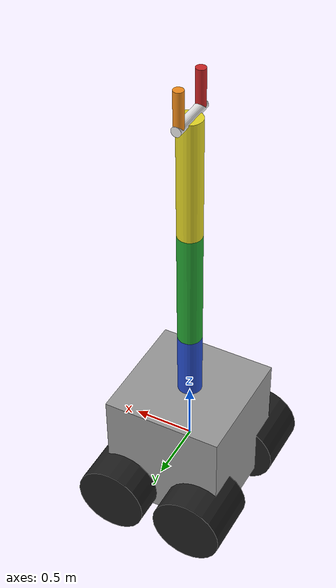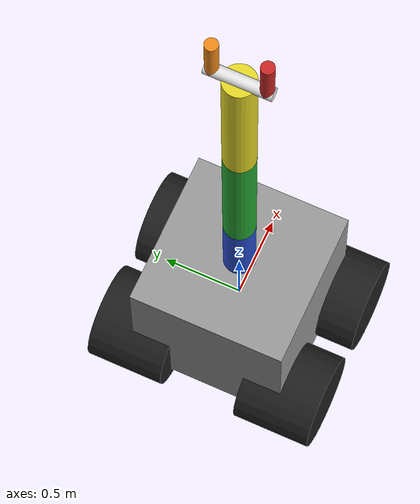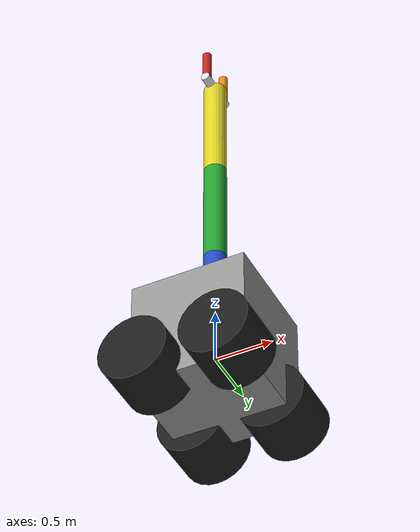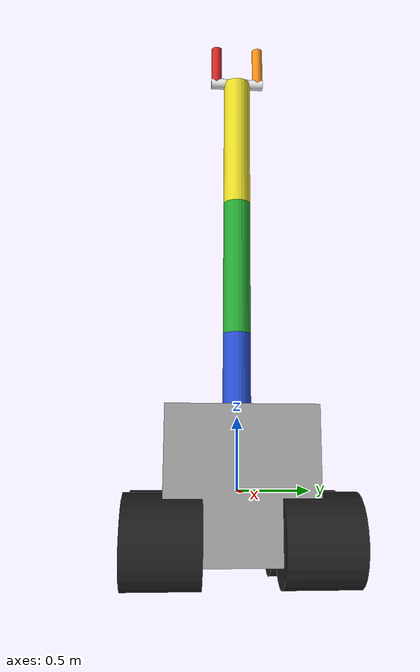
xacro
<?xml version='1.0'?>

<robot name="spw_robot" xmlns:xacro="http://www.ros.org/wiki/xacro">

  <xacro:include filename="$(find spw_robot)/models/robot.gazebo" />

  <gazebo reference="base_center"><material>Gazebo/Grey</material></gazebo>
  <gazebo reference="left_wheel"><material>Gazebo/Black</material></gazebo>
  <gazebo reference="right_wheel"><material>Gazebo/Black</material></gazebo>
  <gazebo reference="left_wheel2"><material>Gazebo/Black</material></gazebo>
  <gazebo reference="right_wheel2"><material>Gazebo/Black</material></gazebo>
  <gazebo reference="link1"><material>Gazebo/Blue</material></gazebo>
  <gazebo reference="link2"><material>Gazebo/Green</material></gazebo>
  <gazebo reference="link3"><material>Gazebo/Yellow</material></gazebo>
  <gazebo reference="link4"><material>Gazebo/White</material></gazebo>
  <gazebo reference="link5"><material>Gazebo/Orange</material></gazebo>
  <gazebo reference="link6"><material>Gazebo/Red</material></gazebo>
  <!-- FOOT PRINT -->
  <link name="robot_footprint"></link>
  <joint name="robot_footprint_joint" type="fixed">
    <origin xyz="0 0 0" rpy="0 0 0" />
    <parent link="robot_footprint"/>
    <child link="base_center" />
  </joint>
  <!-- BASE -->
  <link name="base_center">
    <pose>0 0 0.1 0 0 0</pose>
    <inertial>
      <mass value="15.0"/>
      <origin xyz="0.0 0 0" rpy=" 0 0 0"/>
      <inertia ixx="0.1" ixy="0" ixz="0" iyy="0.1" iyz="0" izz="0.1" />
    </inertial>
    <collision name="collision">
      <origin xyz="0 0 0.05" rpy=" 0 0 0"/>
      <geometry>
        <box size="1 1 1"/>
      </geometry>
    </collision>
    <visual name="base_center_visual">
      <origin xyz="0 0 0.05" rpy=" 0 0 0"/>
      <geometry>
        <box size="1 1 1"/>
      </geometry>
    </visual>
  </link>
  <!-- ARM TO ROTATE AROUND Z AXIS -->
  <joint name="joint1" type="continuous">
    <parent link="base_center"/>
    <child link="link1"/>
    <origin xyz="0 0 0.1" rpy="0 0 0"/>
    <axis xyz="0 0 1"/>
  </joint>
  <link name="link1">
    <collision>
      <origin xyz="0 0 0.5" rpy="0 0 0"/>
      <geometry>
        <cylinder length="1" radius="0.1"/>
      </geometry>
    </collision>
    <visual>
      <origin xyz="0 0 0.5" rpy="0 0 0"/>
      <geometry>
        <cylinder length="1" radius="0.1"/>
      </geometry>
    </visual>
    <inertial>
      <origin xyz="0 0 0.5" rpy="0 0 0"/>
      <mass value="1"/>
      <inertia ixx="0.1" ixy="0.0" ixz="0.0" iyy="0.1" iyz="0.0" izz="0.005"/>
    </inertial>
  </link>
  <!-- ARM TO ROTATE ALONG Y AXIS -->
  <joint name="joint2" type="revolute">
    <parent link="link1"/>
    <child link="link2"/>
    <origin xyz="0 0 1" rpy="0 0 0"/>
    <axis xyz="0 1 0"/>
    <limit effort="1000" velocity="1000" lower="0" upper="1"/>
  </joint>
  <link name="link2">
    <collision>
      <origin xyz="0 0 0.5" rpy="0 0 0"/>
      <geometry>
        <cylinder length="1" radius="0.1"/>
      </geometry>
    </collision>
    <visual>
      <origin xyz="0 0 0.5" rpy="0 0 0"/>
      <geometry>
        <cylinder length="1" radius="0.1"/>
      </geometry>
    </visual>
    <inertial>
      <origin xyz="0 0 0.5" rpy="0 0 0"/>
      <mass value="1"/>
      <inertia ixx="0.1" ixy="0.0" ixz="0.0" iyy="0.1" iyz="0.0" izz="0.005"/>
    </inertial>
  </link>
  <!-- ARM TO ROTATE X AXIS -->
  <joint name="joint3" type="revolute">
    <parent link="link2"/>
    <child link="link3"/>
    <origin xyz="0 0 1" rpy="0 0 0"/>
    <axis xyz="0 1 0"/>
    <limit effort="1000" velocity="1000" lower="0" upper="1"/>
  </joint>
  <link name="link3">
    <collision>
      <origin xyz="0 0 0.5" rpy="0 0 0"/>
      <geometry>
        <cylinder length="1" radius="0.1"/>
      </geometry>
    </collision>
    <visual>
      <origin xyz="0 0 0.5" rpy="0 0 0"/>
      <geometry>
        <cylinder length="1" radius="0.1"/>
      </geometry>
    </visual>
    <inertial>
      <origin xyz="0 0 0.5" rpy="0 0 0"/>
      <mass value="0.6"/>
      <inertia ixx="0.1" ixy="0.0" ixz="0.0" iyy="0.1" iyz="0.0" izz="0.005"/>
    </inertial>
  </link>
  <!-- GRIPPER BASE -->
  <joint name="joint4" type="revolute">
    <parent link="link3"/>
    <child link="link4"/>
    <origin xyz="0 0 1" rpy="0 0 0"/>
    <axis xyz="0 1 0"/>
    <limit effort="10" velocity="10" lower="-1.5708" upper="1.5708"/>
  </joint>
  <link name="link4">
    <collision>
      <origin xyz="0 0 0" rpy="1.5708 0 0"/>
      <geometry>
        <cylinder length="0.4" radius="0.04"/>
      </geometry>
    </collision>
    <visual>
      <origin xyz="0 0 0" rpy="1.5708 0 0"/>
      <geometry>
        <cylinder length="0.4" radius="0.04"/>
      </geometry>
    </visual>
    <inertial>
      <origin xyz="0 0 0" rpy="1.5708 0 0"/>
      <mass value="0.4"/>
      <inertia ixx="0.05" ixy="0.0" ixz="0.0" iyy="0.002" iyz="0.0" izz="0.05"/>
    </inertial>
  </link>
  <!-- GRIPPER LEFT-->
  <joint name="joint5" type="prismatic">
    <parent link="link4"/>
    <child link="link5"/>
    <origin xyz="0 0.16 0" rpy="0 0 0"/>
    <axis xyz="0 1 0"/>
    <limit effort="1000" velocity="1000" lower="-0.1" upper="0.0"/>
  </joint>
  <link name="link5">
    <collision>
      <origin xyz="0 0 0.15" rpy="0 0 0"/>
      <geometry>
        <cylinder length="0.3" radius="0.04"/>
      </geometry>
    </collision>
    <visual>
      <origin xyz="0 0 0.15" rpy="0 0 0"/>
      <geometry>
        <cylinder length="0.3" radius="0.04"/>
      </geometry>
    </visual>
    <inertial>
      <origin xyz="0 0 0.15" rpy="0 0 0"/>
      <mass value="0.2"/>
      <inertia ixx="0.02" ixy="0.0" ixz="0.0" iyy="0.02" iyz="0.0" izz="0.001"/>
    </inertial>
  </link>
  <!-- GRIPPER RIGHT -->
  <joint name="joint6" type="prismatic">
    <parent link="link4"/>
    <child link="link6"/>
    <origin xyz="0 -0.16 0" rpy="0 0 0"/>
    <axis xyz="0 1 0"/>
    <limit effort="1000" velocity="1000" lower="0.0" upper="0.1"/>
  </joint>
  <link name="link6">
    <collision>
      <origin xyz="0 0 0.15" rpy="0 0 0"/>
      <geometry>
        <cylinder length="0.3" radius="0.04"/>
      </geometry>
    </collision>
    <visual>
      <origin xyz="0 0 0.15" rpy="0 0 0"/>
      <geometry>
        <cylinder length="0.3" radius="0.04"/>
      </geometry>
    </visual>
    <inertial>
      <origin xyz="0 0 0.15" rpy="0 0 0"/>
      <mass value="0.2"/>
      <inertia ixx="0.02" ixy="0.0" ixz="0.0" iyy="0.02" iyz="0.0" izz="0.001"/>
    </inertial>
  </link>
  <!-- WHEELS -->
  <joint name="left_wheel_hinge" type="fixed">
    <origin xyz="0.35 0.5 -0.3" rpy="0 0 0" />
    <parent link="base_center"/>
    <child link="left_wheel" />
    <axis xyz="0 1 0" rpy="0 0 0" />
    <limit effort="1000" velocity="1000" />
    <dynamics damping="1.0" friction="1.0" />
  </joint>
  <joint name="right_wheel_hinge" type="fixed">
    <origin xyz="0.35 -0.5 -0.3" rpy="0 0 0" />
    <parent link="base_center"/>
    <child link="right_wheel" />
    <axis xyz="0 1 0" rpy="0 0 0" />
    <limit effort="1000" velocity="1000" />
    <dynamics damping="1.0" friction="1.0" />
  </joint>
  <joint name="left_wheel_hinge2" type="fixed">
    <origin xyz="-0.35 0.5 -0.3" rpy="0 0 0" />
    <parent link="base_center"/>
    <child link="left_wheel2" />
    <axis xyz="0 1 0" rpy="0 0 0" />
    <limit effort="1000" velocity="1000" />
    <dynamics damping="1.0" friction="1.0" />
  </joint>
  <joint name="right_wheel_hinge2" type="fixed">
    <origin xyz="-0.35 -0.5 -0.3" rpy="0 0 0" />
    <parent link="base_center"/>
    <child link="right_wheel2" />
    <axis xyz="0 1 0" rpy="0 0 0" />
    <limit effort="1000" velocity="1000" />
    <dynamics damping="1.0" friction="1.0" />
  </joint>
  <link name="left_wheel">
    <inertial>
      <mass value="5"/>
      <origin xyz="0 0 0" rpy="0 1.5707 1.5707"/>
      <inertia ixx="0.1" ixy="0.0" ixz="0.0" iyy="0.1" iyz="0.0" izz="0.1" />
    </inertial>
    <collision>
      <origin xyz="0 0 0" rpy="0 1.5707 1.5707"/>
      <geometry>
        <cylinder radius="0.3" length="0.5"/>
      </geometry>
    </collision>
    <visual>
      <origin xyz="0 0 0" rpy="0 1.5707 1.5707"/>
      <geometry>
        <cylinder radius="0.3" length="0.5"/>
      </geometry>
    </visual>
  </link>
  <link name="right_wheel">
    <inertial>
      <mass value="5"/>
      <origin xyz="0 0 0" rpy="0 1.5707 1.5707"/>
      <inertia ixx="0.1" ixy="0.0" ixz="0.0" iyy="0.1" iyz="0.0" izz="0.1" />
    </inertial>
    <collision>
      <origin xyz="0 0 0" rpy="0 1.5707 1.5707"/>
      <geometry>
        <cylinder radius="0.3" length="0.5"/>
      </geometry>
    </collision>
    <visual>
      <origin xyz="0 0 0" rpy="0 1.5707 1.5707"/>
      <geometry>
        <cylinder radius="0.3" length="0.5"/>
      </geometry>
    </visual>
  </link>
  <link name="left_wheel2">
    <inertial>
      <mass value="5"/>
      <origin xyz="0 0 0" rpy="0 1.5707 1.5707"/>
      <inertia ixx="0.1" ixy="0.0" ixz="0.0" iyy="0.1" iyz="0.0" izz="0.1" />
    </inertial>
    <collision>
      <origin xyz="0 0 0" rpy="0 1.5707 1.5707"/>
      <geometry>
        <cylinder radius="0.3" length="0.5"/>
      </geometry>
    </collision>
    <visual>
      <origin xyz="0 0 0" rpy="0 1.5707 1.5707"/>
      <geometry>
        <cylinder radius="0.3" length="0.5"/>
      </geometry>
    </visual>
  </link>
  <link name="right_wheel2">
    <inertial>
      <mass value="5"/>
      <origin xyz="0 0 0" rpy="0 1.5707 1.5707"/>
      <inertia ixx="0.1" ixy="0.0" ixz="0.0" iyy="0.1" iyz="0.0" izz="0.1" />
    </inertial>
    <collision>
      <origin xyz="0 0 0" rpy="0 1.5707 1.5707"/>
      <geometry>
        <cylinder radius="0.3" length="0.5"/>
      </geometry>
    </collision>
    <visual>
      <origin xyz="0 0 0" rpy="0 1.5707 1.5707"/>
      <geometry>
        <cylinder radius="0.3" length="0.5"/>
      </geometry>
    </visual>
  </link>

</robot>
